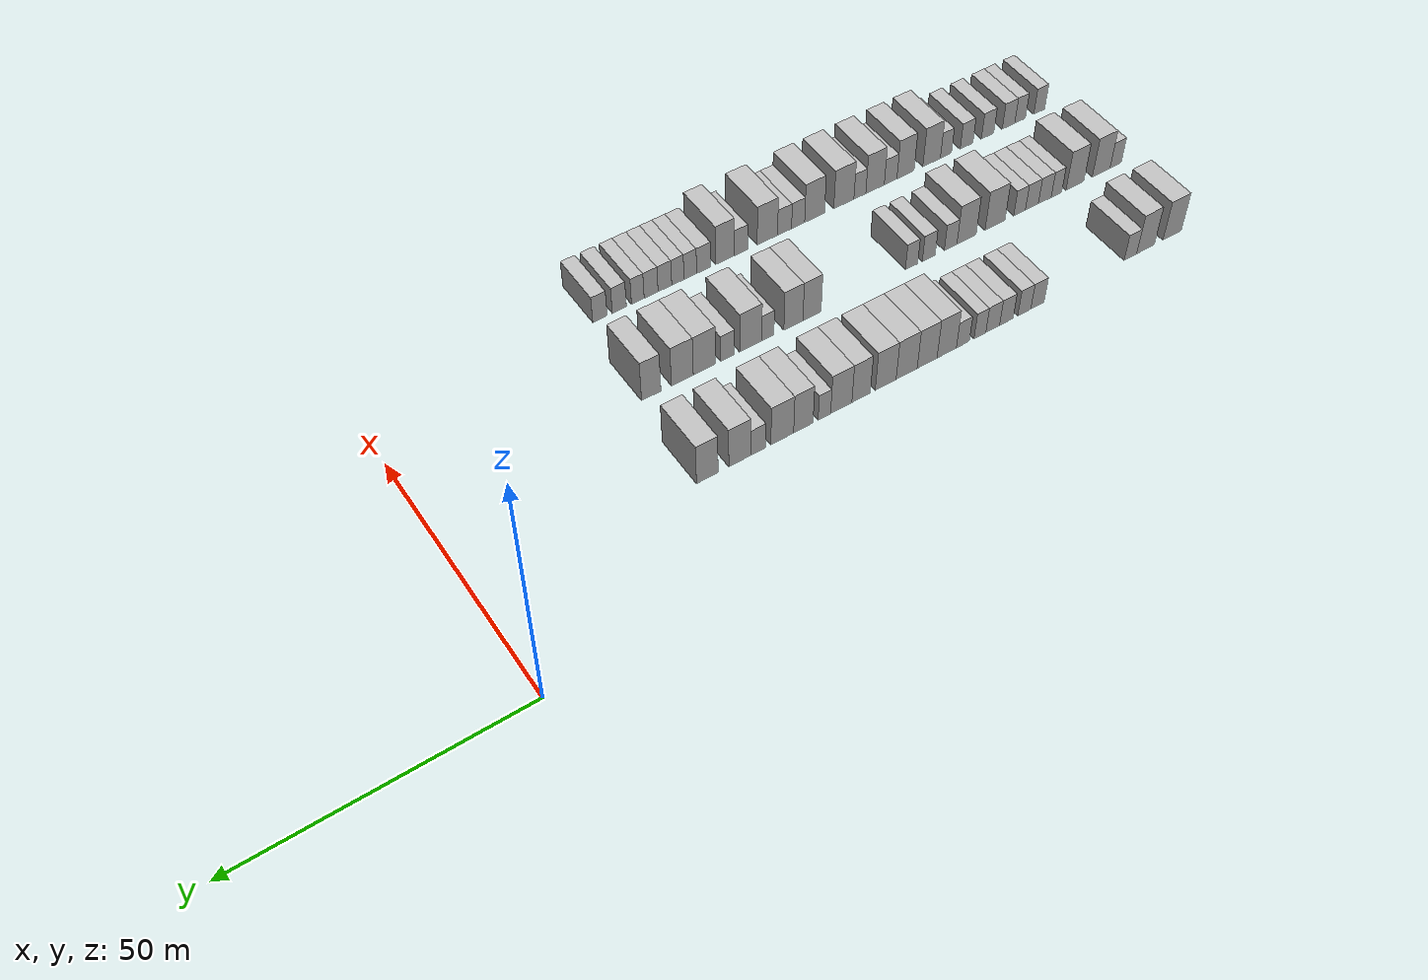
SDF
<sdf version="1.6">
 <world name="default">
  <model name="building_21">
   <static>1</static>
   <pose>25.0000 -136.9755 0 0.000000 0.000000 0.000000</pose>
   <link name="link">
    <pose>0 0 4.50 0 0 0</pose>
    <collision name="collision"><geometry><box><size>10.0000 4.2706 9.0000</size></box></geometry></collision>
    <visual name="visual">
     <cast_shadows>0</cast_shadows>
     <geometry><box><size>10.0000 4.2706 9.0000</size></box></geometry>
     <material>
      <script>
       <uri>model://HANNAS_wall/materials/scripts</uri>
       <uri>model://HANNAS_wall/materials/textures</uri>
       <name>vrc/HANNAS_wall</name>
      </script>
     </material>
    </visual>
   </link>
  </model>
  <model name="building_22">
   <static>1</static>
   <pose>25.0000 -130.8090 0 0.000000 0.000000 0.000000</pose>
   <link name="link">
    <pose>0 0 4.50 0 0 0</pose>
    <collision name="collision"><geometry><box><size>10.0000 4.0625 9.0000</size></box></geometry></collision>
    <visual name="visual">
     <cast_shadows>0</cast_shadows>
     <geometry><box><size>10.0000 4.0625 9.0000</size></box></geometry>
     <material>
      <script>
       <uri>model://HANNAS_wall/materials/scripts</uri>
       <uri>model://HANNAS_wall/materials/textures</uri>
       <name>vrc/HANNAS_wall</name>
      </script>
     </material>
    </visual>
   </link>
  </model>
  <model name="building_23">
   <static>1</static>
   <pose>25.0000 -127.3455 0 0.000000 0.000000 0.000000</pose>
   <link name="link">
    <pose>0 0 3.00 0 0 0</pose>
    <collision name="collision"><geometry><box><size>10.0000 2.8643 6.0000</size></box></geometry></collision>
    <visual name="visual">
     <cast_shadows>0</cast_shadows>
     <geometry><box><size>10.0000 2.8643 6.0000</size></box></geometry>
     <material>
      <script>
       <uri>model://HANNAS_wall/materials/scripts</uri>
       <uri>model://HANNAS_wall/materials/textures</uri>
       <name>vrc/HANNAS_wall</name>
      </script>
     </material>
    </visual>
   </link>
  </model>
  <model name="building_24">
   <static>1</static>
   <pose>25.0000 -106.6029 0 0.000000 0.000000 0.000000</pose>
   <link name="link">
    <pose>0 0 3.00 0 0 0</pose>
    <collision name="collision"><geometry><box><size>10.0000 2.8736 6.0000</size></box></geometry></collision>
    <visual name="visual">
     <cast_shadows>0</cast_shadows>
     <geometry><box><size>10.0000 2.8736 6.0000</size></box></geometry>
     <material>
      <script>
       <uri>model://HANNAS_wall/materials/scripts</uri>
       <uri>model://HANNAS_wall/materials/textures</uri>
       <name>vrc/HANNAS_wall</name>
      </script>
     </material>
    </visual>
   </link>
  </model>
  <model name="building_25">
   <static>1</static>
   <pose>25.0000 -103.7616 0 0.000000 0.000000 0.000000</pose>
   <link name="link">
    <pose>0 0 3.00 0 0 0</pose>
    <collision name="collision"><geometry><box><size>10.0000 2.8090 6.0000</size></box></geometry></collision>
    <visual name="visual">
     <cast_shadows>0</cast_shadows>
     <geometry><box><size>10.0000 2.8090 6.0000</size></box></geometry>
     <material>
      <script>
       <uri>model://HANNAS_wall/materials/scripts</uri>
       <uri>model://HANNAS_wall/materials/textures</uri>
       <name>vrc/HANNAS_wall</name>
      </script>
     </material>
    </visual>
   </link>
  </model>
  <model name="building_26">
   <static>1</static>
   <pose>25.0000 -99.9057 0 0.000000 0.000000 0.000000</pose>
   <link name="link">
    <pose>0 0 3.00 0 0 0</pose>
    <collision name="collision"><geometry><box><size>10.0000 2.9028 6.0000</size></box></geometry></collision>
    <visual name="visual">
     <cast_shadows>0</cast_shadows>
     <geometry><box><size>10.0000 2.9028 6.0000</size></box></geometry>
     <material>
      <script>
       <uri>model://HANNAS_wall/materials/scripts</uri>
       <uri>model://HANNAS_wall/materials/textures</uri>
       <name>vrc/HANNAS_wall</name>
      </script>
     </material>
    </visual>
   </link>
  </model>
  <model name="building_27">
   <static>1</static>
   <pose>25.0000 -97.0012 0 0.000000 0.000000 0.000000</pose>
   <link name="link">
    <pose>0 0 3.00 0 0 0</pose>
    <collision name="collision"><geometry><box><size>10.0000 2.9063 6.0000</size></box></geometry></collision>
    <visual name="visual">
     <cast_shadows>0</cast_shadows>
     <geometry><box><size>10.0000 2.9063 6.0000</size></box></geometry>
     <material>
      <script>
       <uri>model://HANNAS_wall/materials/scripts</uri>
       <uri>model://HANNAS_wall/materials/textures</uri>
       <name>vrc/HANNAS_wall</name>
      </script>
     </material>
    </visual>
   </link>
  </model>
  <model name="building_28">
   <static>1</static>
   <pose>25.0000 -94.2994 0 0.000000 0.000000 0.000000</pose>
   <link name="link">
    <pose>0 0 3.00 0 0 0</pose>
    <collision name="collision"><geometry><box><size>10.0000 2.4973 6.0000</size></box></geometry></collision>
    <visual name="visual">
     <cast_shadows>0</cast_shadows>
     <geometry><box><size>10.0000 2.4973 6.0000</size></box></geometry>
     <material>
      <script>
       <uri>model://HANNAS_wall/materials/scripts</uri>
       <uri>model://HANNAS_wall/materials/textures</uri>
       <name>vrc/HANNAS_wall</name>
      </script>
     </material>
    </visual>
   </link>
  </model>
  <model name="building_29">
   <static>1</static>
   <pose>25.0000 -90.7065 0 0.000000 0.000000 0.000000</pose>
   <link name="link">
    <pose>0 0 3.00 0 0 0</pose>
    <collision name="collision"><geometry><box><size>10.0000 2.6884 6.0000</size></box></geometry></collision>
    <visual name="visual">
     <cast_shadows>0</cast_shadows>
     <geometry><box><size>10.0000 2.6884 6.0000</size></box></geometry>
     <material>
      <script>
       <uri>model://HANNAS_wall/materials/scripts</uri>
       <uri>model://HANNAS_wall/materials/textures</uri>
       <name>vrc/HANNAS_wall</name>
      </script>
     </material>
    </visual>
   </link>
  </model>
  <model name="building_30">
   <static>1</static>
   <pose>25.0000 -87.3513 0 0.000000 0.000000 0.000000</pose>
   <link name="link">
    <pose>0 0 4.50 0 0 0</pose>
    <collision name="collision"><geometry><box><size>10.0000 4.0220 9.0000</size></box></geometry></collision>
    <visual name="visual">
     <cast_shadows>0</cast_shadows>
     <geometry><box><size>10.0000 4.0220 9.0000</size></box></geometry>
     <material>
      <script>
       <uri>model://HANNAS_wall/materials/scripts</uri>
       <uri>model://HANNAS_wall/materials/textures</uri>
       <name>vrc/HANNAS_wall</name>
      </script>
     </material>
    </visual>
   </link>
  </model>
  <model name="building_31">
   <static>1</static>
   <pose>25.0000 -83.2988 0 0.000000 0.000000 0.000000</pose>
   <link name="link">
    <pose>0 0 4.50 0 0 0</pose>
    <collision name="collision"><geometry><box><size>10.0000 4.0831 9.0000</size></box></geometry></collision>
    <visual name="visual">
     <cast_shadows>0</cast_shadows>
     <geometry><box><size>10.0000 4.0831 9.0000</size></box></geometry>
     <material>
      <script>
       <uri>model://HANNAS_wall/materials/scripts</uri>
       <uri>model://HANNAS_wall/materials/textures</uri>
       <name>vrc/HANNAS_wall</name>
      </script>
     </material>
    </visual>
   </link>
  </model>
  <model name="building_32">
   <static>1</static>
   <pose>25.0000 -79.1159 0 0.000000 0.000000 0.000000</pose>
   <link name="link">
    <pose>0 0 4.50 0 0 0</pose>
    <collision name="collision"><geometry><box><size>10.0000 4.2827 9.0000</size></box></geometry></collision>
    <visual name="visual">
     <cast_shadows>0</cast_shadows>
     <geometry><box><size>10.0000 4.2827 9.0000</size></box></geometry>
     <material>
      <script>
       <uri>model://HANNAS_wall/materials/scripts</uri>
       <uri>model://HANNAS_wall/materials/textures</uri>
       <name>vrc/HANNAS_wall</name>
      </script>
     </material>
    </visual>
   </link>
  </model>
  <model name="building_33">
   <static>1</static>
   <pose>25.0000 -74.8744 0 0.000000 0.000000 0.000000</pose>
   <link name="link">
    <pose>0 0 4.50 0 0 0</pose>
    <collision name="collision"><geometry><box><size>10.0000 4.2003 9.0000</size></box></geometry></collision>
    <visual name="visual">
     <cast_shadows>0</cast_shadows>
     <geometry><box><size>10.0000 4.2003 9.0000</size></box></geometry>
     <material>
      <script>
       <uri>model://HANNAS_wall/materials/scripts</uri>
       <uri>model://HANNAS_wall/materials/textures</uri>
       <name>vrc/HANNAS_wall</name>
      </script>
     </material>
    </visual>
   </link>
  </model>
  <model name="building_34">
   <static>1</static>
   <pose>25.0000 -69.9397 0 0.000000 0.000000 0.000000</pose>
   <link name="link">
    <pose>0 0 4.50 0 0 0</pose>
    <collision name="collision"><geometry><box><size>10.0000 3.6691 9.0000</size></box></geometry></collision>
    <visual name="visual">
     <cast_shadows>0</cast_shadows>
     <geometry><box><size>10.0000 3.6691 9.0000</size></box></geometry>
     <material>
      <script>
       <uri>model://HANNAS_wall/materials/scripts</uri>
       <uri>model://HANNAS_wall/materials/textures</uri>
       <name>vrc/HANNAS_wall</name>
      </script>
     </material>
    </visual>
   </link>
  </model>
  <model name="building_35">
   <static>1</static>
   <pose>25.0000 -66.0143 0 0.000000 0.000000 0.000000</pose>
   <link name="link">
    <pose>0 0 4.50 0 0 0</pose>
    <collision name="collision"><geometry><box><size>10.0000 4.1815 9.0000</size></box></geometry></collision>
    <visual name="visual">
     <cast_shadows>0</cast_shadows>
     <geometry><box><size>10.0000 4.1815 9.0000</size></box></geometry>
     <material>
      <script>
       <uri>model://HANNAS_wall/materials/scripts</uri>
       <uri>model://HANNAS_wall/materials/textures</uri>
       <name>vrc/HANNAS_wall</name>
      </script>
     </material>
    </visual>
   </link>
  </model>
  <model name="building_36">
   <static>1</static>
   <pose>25.0000 -62.7050 0 0.000000 0.000000 0.000000</pose>
   <link name="link">
    <pose>0 0 3.00 0 0 0</pose>
    <collision name="collision"><geometry><box><size>10.0000 2.4370 6.0000</size></box></geometry></collision>
    <visual name="visual">
     <cast_shadows>0</cast_shadows>
     <geometry><box><size>10.0000 2.4370 6.0000</size></box></geometry>
     <material>
      <script>
       <uri>model://HANNAS_wall/materials/scripts</uri>
       <uri>model://HANNAS_wall/materials/textures</uri>
       <name>vrc/HANNAS_wall</name>
      </script>
     </material>
    </visual>
   </link>
  </model>
  <model name="building_37">
   <static>1</static>
   <pose>25.0000 -58.6141 0 0.000000 0.000000 0.000000</pose>
   <link name="link">
    <pose>0 0 4.50 0 0 0</pose>
    <collision name="collision"><geometry><box><size>10.0000 3.7449 9.0000</size></box></geometry></collision>
    <visual name="visual">
     <cast_shadows>0</cast_shadows>
     <geometry><box><size>10.0000 3.7449 9.0000</size></box></geometry>
     <material>
      <script>
       <uri>model://HANNAS_wall/materials/scripts</uri>
       <uri>model://HANNAS_wall/materials/textures</uri>
       <name>vrc/HANNAS_wall</name>
      </script>
     </material>
    </visual>
   </link>
  </model>
  <model name="building_38">
   <static>1</static>
   <pose>25.0000 -54.5578 0 0.000000 0.000000 0.000000</pose>
   <link name="link">
    <pose>0 0 4.50 0 0 0</pose>
    <collision name="collision"><geometry><box><size>10.0000 4.3676 9.0000</size></box></geometry></collision>
    <visual name="visual">
     <cast_shadows>0</cast_shadows>
     <geometry><box><size>10.0000 4.3676 9.0000</size></box></geometry>
     <material>
      <script>
       <uri>model://HANNAS_wall/materials/scripts</uri>
       <uri>model://HANNAS_wall/materials/textures</uri>
       <name>vrc/HANNAS_wall</name>
      </script>
     </material>
    </visual>
   </link>
  </model>
  <model name="building_39">
   <static>1</static>
   <pose>25.0000 -49.9786 0 0.000000 0.000000 0.000000</pose>
   <link name="link">
    <pose>0 0 3.00 0 0 0</pose>
    <collision name="collision"><geometry><box><size>10.0000 2.7909 6.0000</size></box></geometry></collision>
    <visual name="visual">
     <cast_shadows>0</cast_shadows>
     <geometry><box><size>10.0000 2.7909 6.0000</size></box></geometry>
     <material>
      <script>
       <uri>model://HANNAS_wall/materials/scripts</uri>
       <uri>model://HANNAS_wall/materials/textures</uri>
       <name>vrc/HANNAS_wall</name>
      </script>
     </material>
    </visual>
   </link>
  </model>
  <model name="building_40">
   <static>1</static>
   <pose>25.0000 -46.5262 0 0.000000 0.000000 0.000000</pose>
   <link name="link">
    <pose>0 0 4.50 0 0 0</pose>
    <collision name="collision"><geometry><box><size>10.0000 4.1139 9.0000</size></box></geometry></collision>
    <visual name="visual">
     <cast_shadows>0</cast_shadows>
     <geometry><box><size>10.0000 4.1139 9.0000</size></box></geometry>
     <material>
      <script>
       <uri>model://HANNAS_wall/materials/scripts</uri>
       <uri>model://HANNAS_wall/materials/textures</uri>
       <name>vrc/HANNAS_wall</name>
      </script>
     </material>
    </visual>
   </link>
  </model>
  <model name="building_41">
   <static>1</static>
   <pose>25.0000 -40.4733 0 0.000000 0.000000 0.000000</pose>
   <link name="link">
    <pose>0 0 4.50 0 0 0</pose>
    <collision name="collision"><geometry><box><size>10.0000 3.9919 9.0000</size></box></geometry></collision>
    <visual name="visual">
     <cast_shadows>0</cast_shadows>
     <geometry><box><size>10.0000 3.9919 9.0000</size></box></geometry>
     <material>
      <script>
       <uri>model://HANNAS_wall/materials/scripts</uri>
       <uri>model://HANNAS_wall/materials/textures</uri>
       <name>vrc/HANNAS_wall</name>
      </script>
     </material>
    </visual>
   </link>
  </model>
  <model name="building_126">
   <static>1</static>
   <pose>44.0000 -140.6596 0 0.000000 0.000000 0.000000</pose>
   <link name="link">
    <pose>0 0 3.00 0 0 0</pose>
    <collision name="collision"><geometry><box><size>10.0000 2.6834 6.0000</size></box></geometry></collision>
    <visual name="visual">
     <cast_shadows>0</cast_shadows>
     <geometry><box><size>10.0000 2.6834 6.0000</size></box></geometry>
     <material>
      <script>
       <uri>model://HANNAS_wall/materials/scripts</uri>
       <uri>model://HANNAS_wall/materials/textures</uri>
       <name>vrc/HANNAS_wall</name>
      </script>
     </material>
    </visual>
   </link>
  </model>
  <model name="building_127">
   <static>1</static>
   <pose>44.0000 -137.2256 0 0.000000 0.000000 0.000000</pose>
   <link name="link">
    <pose>0 0 4.50 0 0 0</pose>
    <collision name="collision"><geometry><box><size>10.0000 4.1845 9.0000</size></box></geometry></collision>
    <visual name="visual">
     <cast_shadows>0</cast_shadows>
     <geometry><box><size>10.0000 4.1845 9.0000</size></box></geometry>
     <material>
      <script>
       <uri>model://HANNAS_wall/materials/scripts</uri>
       <uri>model://HANNAS_wall/materials/textures</uri>
       <name>vrc/HANNAS_wall</name>
      </script>
     </material>
    </visual>
   </link>
  </model>
  <model name="building_128">
   <static>1</static>
   <pose>44.0000 -131.0495 0 0.000000 0.000000 0.000000</pose>
   <link name="link">
    <pose>0 0 4.50 0 0 0</pose>
    <collision name="collision"><geometry><box><size>10.0000 4.1678 9.0000</size></box></geometry></collision>
    <visual name="visual">
     <cast_shadows>0</cast_shadows>
     <geometry><box><size>10.0000 4.1678 9.0000</size></box></geometry>
     <material>
      <script>
       <uri>model://HANNAS_wall/materials/scripts</uri>
       <uri>model://HANNAS_wall/materials/textures</uri>
       <name>vrc/HANNAS_wall</name>
      </script>
     </material>
    </visual>
   </link>
  </model>
  <model name="building_129">
   <static>1</static>
   <pose>44.0000 -126.7523 0 0.000000 0.000000 0.000000</pose>
   <link name="link">
    <pose>0 0 3.00 0 0 0</pose>
    <collision name="collision"><geometry><box><size>10.0000 2.4265 6.0000</size></box></geometry></collision>
    <visual name="visual">
     <cast_shadows>0</cast_shadows>
     <geometry><box><size>10.0000 2.4265 6.0000</size></box></geometry>
     <material>
      <script>
       <uri>model://HANNAS_wall/materials/scripts</uri>
       <uri>model://HANNAS_wall/materials/textures</uri>
       <name>vrc/HANNAS_wall</name>
      </script>
     </material>
    </visual>
   </link>
  </model>
  <model name="building_130">
   <static>1</static>
   <pose>44.0000 -124.0615 0 0.000000 0.000000 0.000000</pose>
   <link name="link">
    <pose>0 0 3.00 0 0 0</pose>
    <collision name="collision"><geometry><box><size>10.0000 2.9551 6.0000</size></box></geometry></collision>
    <visual name="visual">
     <cast_shadows>0</cast_shadows>
     <geometry><box><size>10.0000 2.9551 6.0000</size></box></geometry>
     <material>
      <script>
       <uri>model://HANNAS_wall/materials/scripts</uri>
       <uri>model://HANNAS_wall/materials/textures</uri>
       <name>vrc/HANNAS_wall</name>
      </script>
     </material>
    </visual>
   </link>
  </model>
  <model name="building_131">
   <static>1</static>
   <pose>44.0000 -121.1086 0 0.000000 0.000000 0.000000</pose>
   <link name="link">
    <pose>0 0 3.00 0 0 0</pose>
    <collision name="collision"><geometry><box><size>10.0000 2.9508 6.0000</size></box></geometry></collision>
    <visual name="visual">
     <cast_shadows>0</cast_shadows>
     <geometry><box><size>10.0000 2.9508 6.0000</size></box></geometry>
     <material>
      <script>
       <uri>model://HANNAS_wall/materials/scripts</uri>
       <uri>model://HANNAS_wall/materials/textures</uri>
       <name>vrc/HANNAS_wall</name>
      </script>
     </material>
    </visual>
   </link>
  </model>
  <model name="building_132">
   <static>1</static>
   <pose>44.0000 -118.3177 0 0.000000 0.000000 0.000000</pose>
   <link name="link">
    <pose>0 0 3.00 0 0 0</pose>
    <collision name="collision"><geometry><box><size>10.0000 2.6308 6.0000</size></box></geometry></collision>
    <visual name="visual">
     <cast_shadows>0</cast_shadows>
     <geometry><box><size>10.0000 2.6308 6.0000</size></box></geometry>
     <material>
      <script>
       <uri>model://HANNAS_wall/materials/scripts</uri>
       <uri>model://HANNAS_wall/materials/textures</uri>
       <name>vrc/HANNAS_wall</name>
      </script>
     </material>
    </visual>
   </link>
  </model>
  <model name="building_133">
   <static>1</static>
   <pose>44.0000 -112.7763 0 0.000000 0.000000 0.000000</pose>
   <link name="link">
    <pose>0 0 4.50 0 0 0</pose>
    <collision name="collision"><geometry><box><size>10.0000 4.4521 9.0000</size></box></geometry></collision>
    <visual name="visual">
     <cast_shadows>0</cast_shadows>
     <geometry><box><size>10.0000 4.4521 9.0000</size></box></geometry>
     <material>
      <script>
       <uri>model://HANNAS_wall/materials/scripts</uri>
       <uri>model://HANNAS_wall/materials/textures</uri>
       <name>vrc/HANNAS_wall</name>
      </script>
     </material>
    </visual>
   </link>
  </model>
  <model name="building_134">
   <static>1</static>
   <pose>44.0000 -106.4377 0 0.000000 0.000000 0.000000</pose>
   <link name="link">
    <pose>0 0 4.50 0 0 0</pose>
    <collision name="collision"><geometry><box><size>10.0000 4.2250 9.0000</size></box></geometry></collision>
    <visual name="visual">
     <cast_shadows>0</cast_shadows>
     <geometry><box><size>10.0000 4.2250 9.0000</size></box></geometry>
     <material>
      <script>
       <uri>model://HANNAS_wall/materials/scripts</uri>
       <uri>model://HANNAS_wall/materials/textures</uri>
       <name>vrc/HANNAS_wall</name>
      </script>
     </material>
    </visual>
   </link>
  </model>
  <model name="building_135">
   <static>1</static>
   <pose>44.0000 -102.9479 0 0.000000 0.000000 0.000000</pose>
   <link name="link">
    <pose>0 0 3.00 0 0 0</pose>
    <collision name="collision"><geometry><box><size>10.0000 2.7547 6.0000</size></box></geometry></collision>
    <visual name="visual">
     <cast_shadows>0</cast_shadows>
     <geometry><box><size>10.0000 2.7547 6.0000</size></box></geometry>
     <material>
      <script>
       <uri>model://HANNAS_wall/materials/scripts</uri>
       <uri>model://HANNAS_wall/materials/textures</uri>
       <name>vrc/HANNAS_wall</name>
      </script>
     </material>
    </visual>
   </link>
  </model>
  <model name="building_136">
   <static>1</static>
   <pose>44.0000 -98.1846 0 0.000000 0.000000 0.000000</pose>
   <link name="link">
    <pose>0 0 3.00 0 0 0</pose>
    <collision name="collision"><geometry><box><size>10.0000 2.7719 6.0000</size></box></geometry></collision>
    <visual name="visual">
     <cast_shadows>0</cast_shadows>
     <geometry><box><size>10.0000 2.7719 6.0000</size></box></geometry>
     <material>
      <script>
       <uri>model://HANNAS_wall/materials/scripts</uri>
       <uri>model://HANNAS_wall/materials/textures</uri>
       <name>vrc/HANNAS_wall</name>
      </script>
     </material>
    </visual>
   </link>
  </model>
  <model name="building_137">
   <static>1</static>
   <pose>44.0000 -94.4779 0 0.000000 0.000000 0.000000</pose>
   <link name="link">
    <pose>0 0 3.00 0 0 0</pose>
    <collision name="collision"><geometry><box><size>10.0000 2.6415 6.0000</size></box></geometry></collision>
    <visual name="visual">
     <cast_shadows>0</cast_shadows>
     <geometry><box><size>10.0000 2.6415 6.0000</size></box></geometry>
     <material>
      <script>
       <uri>model://HANNAS_wall/materials/scripts</uri>
       <uri>model://HANNAS_wall/materials/textures</uri>
       <name>vrc/HANNAS_wall</name>
      </script>
     </material>
    </visual>
   </link>
  </model>
  <model name="building_138">
   <static>1</static>
   <pose>44.0000 -73.6039 0 0.000000 0.000000 0.000000</pose>
   <link name="link">
    <pose>0 0 4.50 0 0 0</pose>
    <collision name="collision"><geometry><box><size>10.0000 3.7022 9.0000</size></box></geometry></collision>
    <visual name="visual">
     <cast_shadows>0</cast_shadows>
     <geometry><box><size>10.0000 3.7022 9.0000</size></box></geometry>
     <material>
      <script>
       <uri>model://HANNAS_wall/materials/scripts</uri>
       <uri>model://HANNAS_wall/materials/textures</uri>
       <name>vrc/HANNAS_wall</name>
      </script>
     </material>
    </visual>
   </link>
  </model>
  <model name="building_139">
   <static>1</static>
   <pose>44.0000 -69.8268 0 0.000000 0.000000 0.000000</pose>
   <link name="link">
    <pose>0 0 4.50 0 0 0</pose>
    <collision name="collision"><geometry><box><size>10.0000 3.8521 9.0000</size></box></geometry></collision>
    <visual name="visual">
     <cast_shadows>0</cast_shadows>
     <geometry><box><size>10.0000 3.8521 9.0000</size></box></geometry>
     <material>
      <script>
       <uri>model://HANNAS_wall/materials/scripts</uri>
       <uri>model://HANNAS_wall/materials/textures</uri>
       <name>vrc/HANNAS_wall</name>
      </script>
     </material>
    </visual>
   </link>
  </model>
  <model name="building_140">
   <static>1</static>
   <pose>44.0000 -64.6893 0 0.000000 0.000000 0.000000</pose>
   <link name="link">
    <pose>0 0 3.00 0 0 0</pose>
    <collision name="collision"><geometry><box><size>10.0000 2.4229 6.0000</size></box></geometry></collision>
    <visual name="visual">
     <cast_shadows>0</cast_shadows>
     <geometry><box><size>10.0000 2.4229 6.0000</size></box></geometry>
     <material>
      <script>
       <uri>model://HANNAS_wall/materials/scripts</uri>
       <uri>model://HANNAS_wall/materials/textures</uri>
       <name>vrc/HANNAS_wall</name>
      </script>
     </material>
    </visual>
   </link>
  </model>
  <model name="building_141">
   <static>1</static>
   <pose>44.0000 -61.2857 0 0.000000 0.000000 0.000000</pose>
   <link name="link">
    <pose>0 0 4.50 0 0 0</pose>
    <collision name="collision"><geometry><box><size>10.0000 4.3844 9.0000</size></box></geometry></collision>
    <visual name="visual">
     <cast_shadows>0</cast_shadows>
     <geometry><box><size>10.0000 4.3844 9.0000</size></box></geometry>
     <material>
      <script>
       <uri>model://HANNAS_wall/materials/scripts</uri>
       <uri>model://HANNAS_wall/materials/textures</uri>
       <name>vrc/HANNAS_wall</name>
      </script>
     </material>
    </visual>
   </link>
  </model>
  <model name="building_142">
   <static>1</static>
   <pose>44.0000 -56.7269 0 0.000000 0.000000 0.000000</pose>
   <link name="link">
    <pose>0 0 3.00 0 0 0</pose>
    <collision name="collision"><geometry><box><size>10.0000 2.7332 6.0000</size></box></geometry></collision>
    <visual name="visual">
     <cast_shadows>0</cast_shadows>
     <geometry><box><size>10.0000 2.7332 6.0000</size></box></geometry>
     <material>
      <script>
       <uri>model://HANNAS_wall/materials/scripts</uri>
       <uri>model://HANNAS_wall/materials/textures</uri>
       <name>vrc/HANNAS_wall</name>
      </script>
     </material>
    </visual>
   </link>
  </model>
  <model name="building_143">
   <static>1</static>
   <pose>44.0000 -52.1991 0 0.000000 0.000000 0.000000</pose>
   <link name="link">
    <pose>0 0 4.50 0 0 0</pose>
    <collision name="collision"><geometry><box><size>10.0000 4.3223 9.0000</size></box></geometry></collision>
    <visual name="visual">
     <cast_shadows>0</cast_shadows>
     <geometry><box><size>10.0000 4.3223 9.0000</size></box></geometry>
     <material>
      <script>
       <uri>model://HANNAS_wall/materials/scripts</uri>
       <uri>model://HANNAS_wall/materials/textures</uri>
       <name>vrc/HANNAS_wall</name>
      </script>
     </material>
    </visual>
   </link>
  </model>
  <model name="building_144">
   <static>1</static>
   <pose>44.0000 -47.9372 0 0.000000 0.000000 0.000000</pose>
   <link name="link">
    <pose>0 0 4.50 0 0 0</pose>
    <collision name="collision"><geometry><box><size>10.0000 4.2014 9.0000</size></box></geometry></collision>
    <visual name="visual">
     <cast_shadows>0</cast_shadows>
     <geometry><box><size>10.0000 4.2014 9.0000</size></box></geometry>
     <material>
      <script>
       <uri>model://HANNAS_wall/materials/scripts</uri>
       <uri>model://HANNAS_wall/materials/textures</uri>
       <name>vrc/HANNAS_wall</name>
      </script>
     </material>
    </visual>
   </link>
  </model>
  <model name="building_145">
   <static>1</static>
   <pose>44.0000 -41.9988 0 0.000000 0.000000 0.000000</pose>
   <link name="link">
    <pose>0 0 4.50 0 0 0</pose>
    <collision name="collision"><geometry><box><size>10.0000 3.6755 9.0000</size></box></geometry></collision>
    <visual name="visual">
     <cast_shadows>0</cast_shadows>
     <geometry><box><size>10.0000 3.6755 9.0000</size></box></geometry>
     <material>
      <script>
       <uri>model://HANNAS_wall/materials/scripts</uri>
       <uri>model://HANNAS_wall/materials/textures</uri>
       <name>vrc/HANNAS_wall</name>
      </script>
     </material>
    </visual>
   </link>
  </model>
  <model name="building_235">
   <static>1</static>
   <pose>63.0000 -138.5916 0 0.000000 0.000000 0.000000</pose>
   <link name="link">
    <pose>0 0 3.00 0 0 0</pose>
    <collision name="collision"><geometry><box><size>10.0000 2.6200 6.0000</size></box></geometry></collision>
    <visual name="visual">
     <cast_shadows>0</cast_shadows>
     <geometry><box><size>10.0000 2.6200 6.0000</size></box></geometry>
     <material>
      <script>
       <uri>model://HANNAS_wall/materials/scripts</uri>
       <uri>model://HANNAS_wall/materials/textures</uri>
       <name>vrc/HANNAS_wall</name>
      </script>
     </material>
    </visual>
   </link>
  </model>
  <model name="building_236">
   <static>1</static>
   <pose>63.0000 -134.0183 0 0.000000 0.000000 0.000000</pose>
   <link name="link">
    <pose>0 0 3.00 0 0 0</pose>
    <collision name="collision"><geometry><box><size>10.0000 2.5265 6.0000</size></box></geometry></collision>
    <visual name="visual">
     <cast_shadows>0</cast_shadows>
     <geometry><box><size>10.0000 2.5265 6.0000</size></box></geometry>
     <material>
      <script>
       <uri>model://HANNAS_wall/materials/scripts</uri>
       <uri>model://HANNAS_wall/materials/textures</uri>
       <name>vrc/HANNAS_wall</name>
      </script>
     </material>
    </visual>
   </link>
  </model>
  <model name="building_237">
   <static>1</static>
   <pose>63.0000 -131.2645 0 0.000000 0.000000 0.000000</pose>
   <link name="link">
    <pose>0 0 3.00 0 0 0</pose>
    <collision name="collision"><geometry><box><size>10.0000 2.9813 6.0000</size></box></geometry></collision>
    <visual name="visual">
     <cast_shadows>0</cast_shadows>
     <geometry><box><size>10.0000 2.9813 6.0000</size></box></geometry>
     <material>
      <script>
       <uri>model://HANNAS_wall/materials/scripts</uri>
       <uri>model://HANNAS_wall/materials/textures</uri>
       <name>vrc/HANNAS_wall</name>
      </script>
     </material>
    </visual>
   </link>
  </model>
  <model name="building_238">
   <static>1</static>
   <pose>63.0000 -126.3255 0 0.000000 0.000000 0.000000</pose>
   <link name="link">
    <pose>0 0 3.00 0 0 0</pose>
    <collision name="collision"><geometry><box><size>10.0000 2.8967 6.0000</size></box></geometry></collision>
    <visual name="visual">
     <cast_shadows>0</cast_shadows>
     <geometry><box><size>10.0000 2.8967 6.0000</size></box></geometry>
     <material>
      <script>
       <uri>model://HANNAS_wall/materials/scripts</uri>
       <uri>model://HANNAS_wall/materials/textures</uri>
       <name>vrc/HANNAS_wall</name>
      </script>
     </material>
    </visual>
   </link>
  </model>
  <model name="building_239">
   <static>1</static>
   <pose>63.0000 -121.4090 0 0.000000 0.000000 0.000000</pose>
   <link name="link">
    <pose>0 0 3.00 0 0 0</pose>
    <collision name="collision"><geometry><box><size>10.0000 2.9363 6.0000</size></box></geometry></collision>
    <visual name="visual">
     <cast_shadows>0</cast_shadows>
     <geometry><box><size>10.0000 2.9363 6.0000</size></box></geometry>
     <material>
      <script>
       <uri>model://HANNAS_wall/materials/scripts</uri>
       <uri>model://HANNAS_wall/materials/textures</uri>
       <name>vrc/HANNAS_wall</name>
      </script>
     </material>
    </visual>
   </link>
  </model>
  <model name="building_240">
   <static>1</static>
   <pose>63.0000 -116.6634 0 0.000000 0.000000 0.000000</pose>
   <link name="link">
    <pose>0 0 3.00 0 0 0</pose>
    <collision name="collision"><geometry><box><size>10.0000 2.5551 6.0000</size></box></geometry></collision>
    <visual name="visual">
     <cast_shadows>0</cast_shadows>
     <geometry><box><size>10.0000 2.5551 6.0000</size></box></geometry>
     <material>
      <script>
       <uri>model://HANNAS_wall/materials/scripts</uri>
       <uri>model://HANNAS_wall/materials/textures</uri>
       <name>vrc/HANNAS_wall</name>
      </script>
     </material>
    </visual>
   </link>
  </model>
  <model name="building_241">
   <static>1</static>
   <pose>63.0000 -113.3891 0 0.000000 0.000000 0.000000</pose>
   <link name="link">
    <pose>0 0 4.50 0 0 0</pose>
    <collision name="collision"><geometry><box><size>10.0000 3.9935 9.0000</size></box></geometry></collision>
    <visual name="visual">
     <cast_shadows>0</cast_shadows>
     <geometry><box><size>10.0000 3.9935 9.0000</size></box></geometry>
     <material>
      <script>
       <uri>model://HANNAS_wall/materials/scripts</uri>
       <uri>model://HANNAS_wall/materials/textures</uri>
       <name>vrc/HANNAS_wall</name>
      </script>
     </material>
    </visual>
   </link>
  </model>
  <model name="building_242">
   <static>1</static>
   <pose>63.0000 -107.4722 0 0.000000 0.000000 0.000000</pose>
   <link name="link">
    <pose>0 0 4.50 0 0 0</pose>
    <collision name="collision"><geometry><box><size>10.0000 3.8402 9.0000</size></box></geometry></collision>
    <visual name="visual">
     <cast_shadows>0</cast_shadows>
     <geometry><box><size>10.0000 3.8402 9.0000</size></box></geometry>
     <material>
      <script>
       <uri>model://HANNAS_wall/materials/scripts</uri>
       <uri>model://HANNAS_wall/materials/textures</uri>
       <name>vrc/HANNAS_wall</name>
      </script>
     </material>
    </visual>
   </link>
  </model>
  <model name="building_243">
   <static>1</static>
   <pose>63.0000 -104.1426 0 0.000000 0.000000 0.000000</pose>
   <link name="link">
    <pose>0 0 3.00 0 0 0</pose>
    <collision name="collision"><geometry><box><size>10.0000 2.8191 6.0000</size></box></geometry></collision>
    <visual name="visual">
     <cast_shadows>0</cast_shadows>
     <geometry><box><size>10.0000 2.8191 6.0000</size></box></geometry>
     <material>
      <script>
       <uri>model://HANNAS_wall/materials/scripts</uri>
       <uri>model://HANNAS_wall/materials/textures</uri>
       <name>vrc/HANNAS_wall</name>
      </script>
     </material>
    </visual>
   </link>
  </model>
  <model name="building_244">
   <static>1</static>
   <pose>63.0000 -100.6853 0 0.000000 0.000000 0.000000</pose>
   <link name="link">
    <pose>0 0 4.50 0 0 0</pose>
    <collision name="collision"><geometry><box><size>10.0000 4.0956 9.0000</size></box></geometry></collision>
    <visual name="visual">
     <cast_shadows>0</cast_shadows>
     <geometry><box><size>10.0000 4.0956 9.0000</size></box></geometry>
     <material>
      <script>
       <uri>model://HANNAS_wall/materials/scripts</uri>
       <uri>model://HANNAS_wall/materials/textures</uri>
       <name>vrc/HANNAS_wall</name>
      </script>
     </material>
    </visual>
   </link>
  </model>
  <model name="building_245">
   <static>1</static>
   <pose>63.0000 -97.3311 0 0.000000 0.000000 0.000000</pose>
   <link name="link">
    <pose>0 0 3.00 0 0 0</pose>
    <collision name="collision"><geometry><box><size>10.0000 2.6127 6.0000</size></box></geometry></collision>
    <visual name="visual">
     <cast_shadows>0</cast_shadows>
     <geometry><box><size>10.0000 2.6127 6.0000</size></box></geometry>
     <material>
      <script>
       <uri>model://HANNAS_wall/materials/scripts</uri>
       <uri>model://HANNAS_wall/materials/textures</uri>
       <name>vrc/HANNAS_wall</name>
      </script>
     </material>
    </visual>
   </link>
  </model>
  <model name="building_246">
   <static>1</static>
   <pose>63.0000 -93.8274 0 0.000000 0.000000 0.000000</pose>
   <link name="link">
    <pose>0 0 4.50 0 0 0</pose>
    <collision name="collision"><geometry><box><size>10.0000 4.3947 9.0000</size></box></geometry></collision>
    <visual name="visual">
     <cast_shadows>0</cast_shadows>
     <geometry><box><size>10.0000 4.3947 9.0000</size></box></geometry>
     <material>
      <script>
       <uri>model://HANNAS_wall/materials/scripts</uri>
       <uri>model://HANNAS_wall/materials/textures</uri>
       <name>vrc/HANNAS_wall</name>
      </script>
     </material>
    </visual>
   </link>
  </model>
  <model name="building_247">
   <static>1</static>
   <pose>63.0000 -87.4953 0 0.000000 0.000000 0.000000</pose>
   <link name="link">
    <pose>0 0 4.50 0 0 0</pose>
    <collision name="collision"><geometry><box><size>10.0000 4.2696 9.0000</size></box></geometry></collision>
    <visual name="visual">
     <cast_shadows>0</cast_shadows>
     <geometry><box><size>10.0000 4.2696 9.0000</size></box></geometry>
     <material>
      <script>
       <uri>model://HANNAS_wall/materials/scripts</uri>
       <uri>model://HANNAS_wall/materials/textures</uri>
       <name>vrc/HANNAS_wall</name>
      </script>
     </material>
    </visual>
   </link>
  </model>
  <model name="building_248">
   <static>1</static>
   <pose>63.0000 -83.9675 0 0.000000 0.000000 0.000000</pose>
   <link name="link">
    <pose>0 0 3.00 0 0 0</pose>
    <collision name="collision"><geometry><box><size>10.0000 2.7859 6.0000</size></box></geometry></collision>
    <visual name="visual">
     <cast_shadows>0</cast_shadows>
     <geometry><box><size>10.0000 2.7859 6.0000</size></box></geometry>
     <material>
      <script>
       <uri>model://HANNAS_wall/materials/scripts</uri>
       <uri>model://HANNAS_wall/materials/textures</uri>
       <name>vrc/HANNAS_wall</name>
      </script>
     </material>
    </visual>
   </link>
  </model>
  <model name="building_249">
   <static>1</static>
   <pose>63.0000 -81.0901 0 0.000000 0.000000 0.000000</pose>
   <link name="link">
    <pose>0 0 3.00 0 0 0</pose>
    <collision name="collision"><geometry><box><size>10.0000 2.9689 6.0000</size></box></geometry></collision>
    <visual name="visual">
     <cast_shadows>0</cast_shadows>
     <geometry><box><size>10.0000 2.9689 6.0000</size></box></geometry>
     <material>
      <script>
       <uri>model://HANNAS_wall/materials/scripts</uri>
       <uri>model://HANNAS_wall/materials/textures</uri>
       <name>vrc/HANNAS_wall</name>
      </script>
     </material>
    </visual>
   </link>
  </model>
  <model name="building_250">
   <static>1</static>
   <pose>63.0000 -77.4674 0 0.000000 0.000000 0.000000</pose>
   <link name="link">
    <pose>0 0 4.50 0 0 0</pose>
    <collision name="collision"><geometry><box><size>10.0000 4.2765 9.0000</size></box></geometry></collision>
    <visual name="visual">
     <cast_shadows>0</cast_shadows>
     <geometry><box><size>10.0000 4.2765 9.0000</size></box></geometry>
     <material>
      <script>
       <uri>model://HANNAS_wall/materials/scripts</uri>
       <uri>model://HANNAS_wall/materials/textures</uri>
       <name>vrc/HANNAS_wall</name>
      </script>
     </material>
    </visual>
   </link>
  </model>
  <model name="building_251">
   <static>1</static>
   <pose>63.0000 -71.9466 0 0.000000 0.000000 0.000000</pose>
   <link name="link">
    <pose>0 0 3.00 0 0 0</pose>
    <collision name="collision"><geometry><box><size>10.0000 2.7650 6.0000</size></box></geometry></collision>
    <visual name="visual">
     <cast_shadows>0</cast_shadows>
     <geometry><box><size>10.0000 2.7650 6.0000</size></box></geometry>
     <material>
      <script>
       <uri>model://HANNAS_wall/materials/scripts</uri>
       <uri>model://HANNAS_wall/materials/textures</uri>
       <name>vrc/HANNAS_wall</name>
      </script>
     </material>
    </visual>
   </link>
  </model>
  <model name="building_252">
   <static>1</static>
   <pose>63.0000 -68.6561 0 0.000000 0.000000 0.000000</pose>
   <link name="link">
    <pose>0 0 4.50 0 0 0</pose>
    <collision name="collision"><geometry><box><size>10.0000 3.8160 9.0000</size></box></geometry></collision>
    <visual name="visual">
     <cast_shadows>0</cast_shadows>
     <geometry><box><size>10.0000 3.8160 9.0000</size></box></geometry>
     <material>
      <script>
       <uri>model://HANNAS_wall/materials/scripts</uri>
       <uri>model://HANNAS_wall/materials/textures</uri>
       <name>vrc/HANNAS_wall</name>
      </script>
     </material>
    </visual>
   </link>
  </model>
  <model name="building_253">
   <static>1</static>
   <pose>63.0000 -64.3049 0 0.000000 0.000000 0.000000</pose>
   <link name="link">
    <pose>0 0 3.00 0 0 0</pose>
    <collision name="collision"><geometry><box><size>10.0000 2.8864 6.0000</size></box></geometry></collision>
    <visual name="visual">
     <cast_shadows>0</cast_shadows>
     <geometry><box><size>10.0000 2.8864 6.0000</size></box></geometry>
     <material>
      <script>
       <uri>model://HANNAS_wall/materials/scripts</uri>
       <uri>model://HANNAS_wall/materials/textures</uri>
       <name>vrc/HANNAS_wall</name>
      </script>
     </material>
    </visual>
   </link>
  </model>
  <model name="building_254">
   <static>1</static>
   <pose>63.0000 -61.5778 0 0.000000 0.000000 0.000000</pose>
   <link name="link">
    <pose>0 0 3.00 0 0 0</pose>
    <collision name="collision"><geometry><box><size>10.0000 2.5679 6.0000</size></box></geometry></collision>
    <visual name="visual">
     <cast_shadows>0</cast_shadows>
     <geometry><box><size>10.0000 2.5679 6.0000</size></box></geometry>
     <material>
      <script>
       <uri>model://HANNAS_wall/materials/scripts</uri>
       <uri>model://HANNAS_wall/materials/textures</uri>
       <name>vrc/HANNAS_wall</name>
      </script>
     </material>
    </visual>
   </link>
  </model>
  <model name="building_255">
   <static>1</static>
   <pose>63.0000 -59.0633 0 0.000000 0.000000 0.000000</pose>
   <link name="link">
    <pose>0 0 3.00 0 0 0</pose>
    <collision name="collision"><geometry><box><size>10.0000 2.4611 6.0000</size></box></geometry></collision>
    <visual name="visual">
     <cast_shadows>0</cast_shadows>
     <geometry><box><size>10.0000 2.4611 6.0000</size></box></geometry>
     <material>
      <script>
       <uri>model://HANNAS_wall/materials/scripts</uri>
       <uri>model://HANNAS_wall/materials/textures</uri>
       <name>vrc/HANNAS_wall</name>
      </script>
     </material>
    </visual>
   </link>
  </model>
  <model name="building_256">
   <static>1</static>
   <pose>63.0000 -56.4621 0 0.000000 0.000000 0.000000</pose>
   <link name="link">
    <pose>0 0 3.00 0 0 0</pose>
    <collision name="collision"><geometry><box><size>10.0000 2.7415 6.0000</size></box></geometry></collision>
    <visual name="visual">
     <cast_shadows>0</cast_shadows>
     <geometry><box><size>10.0000 2.7415 6.0000</size></box></geometry>
     <material>
      <script>
       <uri>model://HANNAS_wall/materials/scripts</uri>
       <uri>model://HANNAS_wall/materials/textures</uri>
       <name>vrc/HANNAS_wall</name>
      </script>
     </material>
    </visual>
   </link>
  </model>
  <model name="building_257">
   <static>1</static>
   <pose>63.0000 -53.7127 0 0.000000 0.000000 0.000000</pose>
   <link name="link">
    <pose>0 0 3.00 0 0 0</pose>
    <collision name="collision"><geometry><box><size>10.0000 2.7572 6.0000</size></box></geometry></collision>
    <visual name="visual">
     <cast_shadows>0</cast_shadows>
     <geometry><box><size>10.0000 2.7572 6.0000</size></box></geometry>
     <material>
      <script>
       <uri>model://HANNAS_wall/materials/scripts</uri>
       <uri>model://HANNAS_wall/materials/textures</uri>
       <name>vrc/HANNAS_wall</name>
      </script>
     </material>
    </visual>
   </link>
  </model>
  <model name="building_258">
   <static>1</static>
   <pose>63.0000 -51.0818 0 0.000000 0.000000 0.000000</pose>
   <link name="link">
    <pose>0 0 3.00 0 0 0</pose>
    <collision name="collision"><geometry><box><size>10.0000 2.5048 6.0000</size></box></geometry></collision>
    <visual name="visual">
     <cast_shadows>0</cast_shadows>
     <geometry><box><size>10.0000 2.5048 6.0000</size></box></geometry>
     <material>
      <script>
       <uri>model://HANNAS_wall/materials/scripts</uri>
       <uri>model://HANNAS_wall/materials/textures</uri>
       <name>vrc/HANNAS_wall</name>
      </script>
     </material>
    </visual>
   </link>
  </model>
  <model name="building_259">
   <static>1</static>
   <pose>63.0000 -47.4509 0 0.000000 0.000000 0.000000</pose>
   <link name="link">
    <pose>0 0 3.00 0 0 0</pose>
    <collision name="collision"><geometry><box><size>10.0000 2.7570 6.0000</size></box></geometry></collision>
    <visual name="visual">
     <cast_shadows>0</cast_shadows>
     <geometry><box><size>10.0000 2.7570 6.0000</size></box></geometry>
     <material>
      <script>
       <uri>model://HANNAS_wall/materials/scripts</uri>
       <uri>model://HANNAS_wall/materials/textures</uri>
       <name>vrc/HANNAS_wall</name>
      </script>
     </material>
    </visual>
   </link>
  </model>
  <model name="building_260">
   <static>1</static>
   <pose>63.0000 -43.6751 0 0.000000 0.000000 0.000000</pose>
   <link name="link">
    <pose>0 0 3.00 0 0 0</pose>
    <collision name="collision"><geometry><box><size>10.0000 2.7946 6.0000</size></box></geometry></collision>
    <visual name="visual">
     <cast_shadows>0</cast_shadows>
     <geometry><box><size>10.0000 2.7946 6.0000</size></box></geometry>
     <material>
      <script>
       <uri>model://HANNAS_wall/materials/scripts</uri>
       <uri>model://HANNAS_wall/materials/textures</uri>
       <name>vrc/HANNAS_wall</name>
      </script>
     </material>
    </visual>
   </link>
  </model>
 </world>
</sdf>
